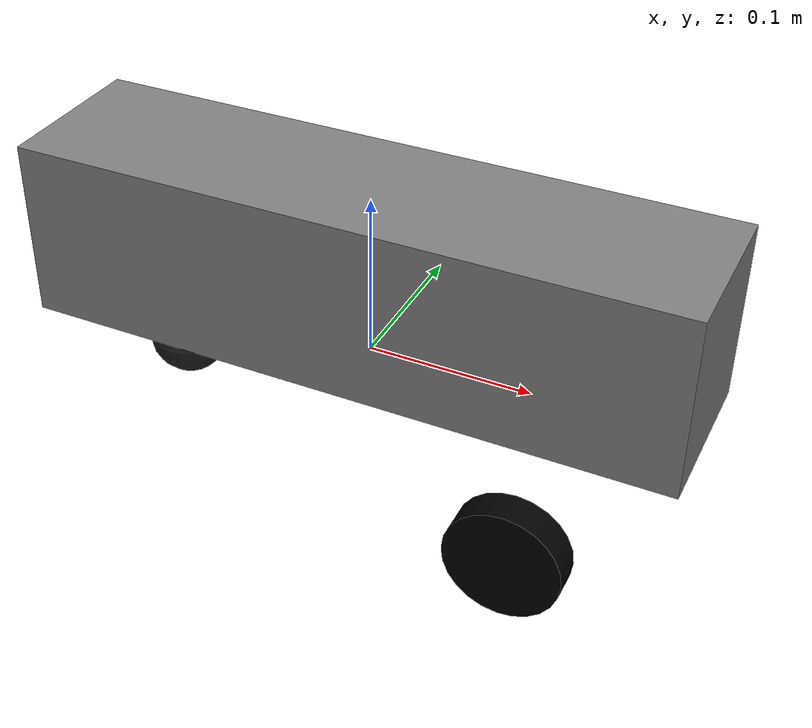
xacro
<?xml version="1.0"?>
<robot
     xmlns:xacro="http://www.ros.org/wiki/xacro" name="brobot">
     <!-- define the base-link origin to lie at floor level, between the drive wheels-->
     <!--main body is a simple box; origin is a center of box-->
    <xacro:property name="vis_bodylen" value="0.4" />
    <xacro:property name="vis_bodywidth" value="0.1" />
    <xacro:property name="vis_bodyheight" value="0.11" />

    <xacro:property name="real_bodylen" value="0.4" />
    <xacro:property name="real_bodywidth" value="0.2" />
    <xacro:property name="real_bodyheight" value="0.11" />
    <xacro:property name="body_mass" value="20.0" />
    <xacro:property name="bodyclearance" value="0.0" />  <!--clearance from bottom of box to ground-->

    <!-- "track" is the distance between the drive wheels -->
    <xacro:property name="track" value="${real_bodywidth}" />
    <xacro:property name="sonar_offset" value="-0.18" />  <!--clearance from bottom of box to ground-->

    <!-- Wheels -->
    <xacro:property name="wheel_radius" value="${0.14605/2}" />
    <xacro:property name="front_wheelX" value="${-wheel_radius+real_bodylen/2}" />
    <xacro:property name="rear_wheelX" value="${-wheel_radius+real_bodylen/2}" />
    <xacro:property name="wheelY" value="${real_bodywidth/2}" />
    <xacro:property name="wheelZ" value="${wheel_radius-0.1}" />

  <!-- caster wheel radius and height -->
  <!-- caster wheel mass -->
  <xacro:property name="caster_f_height" value="${0.14605}" />
  <xacro:property name="caster_f_radius" value="0.025" />
  <xacro:property name="caster_f_mass" value="0.5" /> <!-- in kg-->

  <!-- caster wheel radius and height -->
  <!-- caster wheel mass -->
  <xacro:property name="caster_b_height" value="0.04" />
  <xacro:property name="caster_b_radius" value="0.025" />
  <xacro:property name="caster_b_mass" value="0.5" /> <!-- in kg-->

    <!-- Material -->
    <material name="chassis_mat">
      <color rgba="0.5 0.5 0.5 1"/>
    </material>
    <!--here is a default inertia matrix with small, but legal values; use this when don't need accuracy for I -->
    <!--model will assign inertia matrix dominated by main body box -->
    <xacro:macro name="default_inertial" params="mass *origin">
        <inertial>
          <xacro:insert_block name="origin"/>
          <mass value="${mass}" />
          <inertia ixx="0.001" ixy="0.0" ixz="0.0"
            iyy="0.001" iyz="0.0"
            izz="0.001" />
        </inertial>
    </xacro:macro>

    <!-- Inertia of a solid cuboid. Width is measured along the x axis, depth
       along the y axis, and height along the z axis. -->

  <xacro:macro name="solid_cuboid_inertial"
               params="width depth height mass *origin">
    <inertial>
      <xacro:insert_block name="origin"/>
      <mass value="${mass}"/>
      <inertia ixx="0.01"
               ixy="0" ixz="0"
               iyy="0.01"
               iyz="0"
               izz="0.01"/>
    </inertial>
  </xacro:macro>

<!-- Body -->

  <!-- Base Link -->
  <!-- base_link must have geometry so that its axes can be displayed in
       rviz. -->
  <link name="base_link">
    <visual>
    <origin xyz="0 0 0"/>
      <geometry>
        <box size="0.01 0.01 0.01"/>
      </geometry>
      <material name="chassis_mat"/>
    </visual>

   <!-- Does this need a collision box? -->
    <collision>
      <origin xyz="0 0 0"/>
      <geometry>
        <box size="0.01 0.01 0.01"/>
      </geometry>
    </collision>

    <xacro:default_inertial mass="${0.01}">
    <origin xyz="0 0 0"/>
    </xacro:default_inertial>
  </link>
  <gazebo reference="base_link">
    <material>Gazebo/Grey</material>
  </gazebo>

<!-- Joint between Base_Link and Chassis -->
  <joint name="base_link_to_chassis" type="fixed">
    <parent link="base_link"/>
    <child link="chassis"/>
  </joint>

  <!-- Chassis -->
  <link name="chassis">
    <visual>
      <origin xyz="0 0 ${vis_bodyheight/2+bodyclearance}"/>
      <geometry>
        <box size="${vis_bodylen} ${vis_bodywidth} ${vis_bodyheight}"/>
      </geometry>
      <material name="chassis_mat"/>
    </visual>

    <collision>
      <origin xyz="0 0 ${real_bodyheight/2+bodyclearance}"/>
      <geometry>
        <box size="${real_bodylen} ${real_bodywidth} ${real_bodyheight}"/>
      </geometry>
    </collision>

  <xacro:solid_cuboid_inertial
        width="${real_bodylen}" depth="${real_bodywidth}"
        height="${real_bodyheight}" mass="${body_mass}">
      <origin xyz="0 0 ${real_bodyheight/2+bodyclearance}"/>
    </xacro:solid_cuboid_inertial>
  </link>
  <gazebo reference="chassis">
    <material>Gazebo/Grey</material>
  </gazebo>

<!-- Wheels -->
  <xacro:include filename="$(find bad_robot_urdf)/urdf/wheels.xacro"/>

  <xacro:rear_wheel lr_prefix="left" fr_prefix="front"
                     lr_reflect="1" fr_reflect="1"
                     x="${front_wheelX}" y="${wheelY}" z="${wheelZ}"/>
  <xacro:rear_wheel lr_prefix="right" fr_prefix="front"
                     lr_reflect="-1" fr_reflect="1"
                     x="${front_wheelX}" y="${wheelY}" z="${wheelZ}"/>

<!-- Caster Wheel Macro -->

<!--Caster back  -->

    <link name="caster_back_link">

    <visual>
      <origin xyz="0 0 0 " rpy="${M_PI/2} 0 0" />

      <geometry>

	<sphere radius="${caster_b_radius}" />

      </geometry>
      <material name="Black" />
    </visual>

      <collision>
        <geometry>
		<sphere radius="${caster_b_radius}" />
        </geometry>
      <origin xyz="0 0 0 " rpy="${M_PI/2} 0 0" />
      </collision>
      <inertial>
        <mass value="${caster_b_mass}" />
        <origin xyz="0 0 0" />
        <inertia ixx="0.001" ixy="0.0" ixz="0.0"
                 iyy="0.001" iyz="0.0"
                 izz="0.001" />
      </inertial>
    </link>

    <joint name="caster_back_joint" type="fixed">
      <parent link="base_link"/>
      <child link="caster_back_link"/>
      <origin xyz="${-rear_wheelX} ${0.0} ${wheelZ}" rpy="${-M_PI/2} 0 0"/>
    </joint>

  <gazebo reference="caster_back_link">
    <turnGravityOff>false</turnGravityOff>
        <mu1>0.0</mu1>
    <mu2>0.0</mu2>
    <material>Gazebo/Black</material>
  </gazebo>

<!-- Sonar -->

<!-- Lidar -->
  <!--Lidar Joint-->

<!-- Lidar Link-->
<!-- Kinect -->
  <!-- attach the kinect to the mobile robot -->
  <!-- kinect depth frame has a different viewpoint; publish it separately-->
<!-- Camera -->
  <!-- attach the camera to the mobile robot -->

<!-- Gazebo Settings -->

 <gazebo>
    <!-- Needed otherwise Error Message, maybe just needs robotNamespace as a parameter -->
    <plugin name="differential_drive_controller" filename="libgazebo_ros_diff_drive.so">
    <alwaysOn>true</alwaysOn>
    <updateRate>100</updateRate>
    <legacyMode>true</legacyMode>
    <leftJoint>right_front_axle</leftJoint>
    <rightJoint>left_front_axle</rightJoint>
    <wheelSeparation>${track}</wheelSeparation>
    <wheelDiameter>${0.14605}</wheelDiameter>
    <torque>200</torque>
    <commandTopic>cmd_vel</commandTopic>
    <odometryTopic>odom</odometryTopic>
    <odometryFrame>odom</odometryFrame>
    <robotBaseFrame>base_link</robotBaseFrame>
    <!--don't publish wheel TF, so it does not conflict with robot_state_publisher -->
    <publishWheelTF>false</publishWheelTF>
    <publishWheelJointState>true</publishWheelJointState>
  </plugin>
 </gazebo>

</robot>

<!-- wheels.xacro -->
<robot name="wheel" xmlns:xacro="http://www.ros.org/wiki/xacro">

  <!-- Parameter -->
  <xacro:property name="M_PI" value="3.1415926535897931" />
  <xacro:property name="Einschlagswinkel" value="${M_PI/8}"/>
  <xacro:property name="degrees_90" value="${M_PI/2}"/>

  <xacro:property name="hub_dia" value="${0.03652}"/>
  <xacro:property name="tire_dia" value="${0.06605}"/>
  <xacro:property name="tire_width" value="0.0189"/>
  <xacro:property name="wheel_mass" value="0.29"/>

  <xacro:property name="axle_eff_limit" value="1.12766"/>
  <xacro:property name="axle_vel_limit" value="10.8696"/>

  <!-- These constants are used to simulate a Traxxas 2056 servo operated at
       6 V. servo_stall_torque is measured in N m. servo_no_load_speed is
       measured in rad/s. -->

    <xacro:property name="servo_stall_torque" value="0.5649"/>
  <xacro:property name="servo_no_load_speed" value="4.553"/>

<!-- Materials -->
  <material name="tire_mat">
    <color rgba="0 0 0 1"/>
  </material>

<!-- Macros -->
  <!-- Null inertial element. This is needed to make the model work with
       Gazebo. -->
  <xacro:macro name="null_inertial">
    <inertial>
      <mass value="0.001"/>
      <inertia ixx="0.001" ixy="0" ixz="0" iyy="0.001" iyz="0" izz="0.001"/>
    </inertial>
  </xacro:macro>

  <!-- Inertia of a solid cuboid. Width is measured along the x axis, depth
       along the y axis, and height along the z axis. -->
  <xacro:macro name="solid_cuboid_inertial"
               params="width depth height mass *origin">
    <inertial>
      <xacro:insert_block name="origin"/>
      <mass value="${mass}"/>
      <inertia ixx="${mass * (depth * depth + height * height) / 12}"
               ixy="0" ixz="0"
               iyy="${mass * (width * width + height * height) / 12}"
               iyz="0"
               izz="${mass * (width * width + depth * depth) / 12}"/>
    </inertial>
  </xacro:macro>

  <xacro:macro name="thick_walled_tube_inertial"
               params="inner_rad outer_rad height mass">
    <inertial>
      <mass value="${mass}"/>
      <inertia ixx="${(1 / 12) * mass * (3 * (inner_rad * inner_rad +
                    outer_rad * outer_rad) + height * height)}"
               ixy="0" ixz="0"
               iyy="${(1 / 12) * mass * (3 * (inner_rad * inner_rad +
                    outer_rad * outer_rad) + height * height)}"
               iyz="0"
               izz="${mass * (inner_rad * inner_rad +
                    outer_rad * outer_rad) / 2}"/>
    </inertial>
  </xacro:macro>

  <xacro:macro name="chassis_joint"
               params="lr_prefix fr_prefix lr_reflect fr_reflect child x y z">
    <joint name="${lr_prefix}_${fr_prefix}_chassis_joint" type="fixed">
      <parent link="chassis"/>
      <child link="${child}"/>
      <origin xyz="${x*fr_reflect} ${y*lr_reflect} ${z}"/>
      <axis xyz="0 0 -1"/>
    </joint>
  </xacro:macro>

<!-- Steering Joint -->

  <xacro:macro name="steering_joint" params="lr_prefix fr_prefix lr_reflect fr_reflect">
    <joint name="${lr_prefix}_${fr_prefix}_steering_joint" type="revolute">
    <!-- revolute -->
      <parent link="${lr_prefix}_${fr_prefix}_steering_link"/>
      <child link="${lr_prefix}_${fr_prefix}_axle_carrier"/>
      <axis xyz="0 0 1"/>
      <limit lower="${-Einschlagswinkel}" upper="${Einschlagswinkel}"
             effort="${servo_stall_torque}" velocity="${servo_no_load_speed}"/>
    </joint>
<!-- Transmission -->
    <transmission name="${lr_prefix}_${fr_prefix}_steering_joint_trans">
      <type>transmission_interface/SimpleTransmission</type>
      <joint name="${lr_prefix}_${fr_prefix}_steering_joint">
        <hardwareInterface>hardware_interface/EffortJointInterface</hardwareInterface>
      </joint>
      <actuator name="${lr_prefix}_${fr_prefix}_steering_joint_act">
        <hardwareInterface>hardware_interface/EffortJointInterface</hardwareInterface>
        <mechanicalReduction>1</mechanicalReduction>
      </actuator>
    </transmission>
  </xacro:macro>

<!-- Axle Joint -->
   <xacro:macro name="axle" params="lr_prefix fr_prefix lr_reflect fr_reflect">
    <joint name="${lr_prefix}_${fr_prefix}_axle" type="continuous">
      <parent link="${lr_prefix}_${fr_prefix}_axle_carrier"/>
      <child link="${lr_prefix}_${fr_prefix}_wheel"/>
      <origin rpy="${degrees_90} 0 0"/>
      <axis xyz="0 0 -1"/>
      <limit effort="${axle_eff_limit}" velocity="${axle_vel_limit}"/>
    </joint>
    <transmission name="${lr_prefix}_${fr_prefix}_axle_trans">
      <type>transmission_interface/SimpleTransmission</type>
      <joint name="${lr_prefix}_${fr_prefix}_axle">
        <hardwareInterface>hardware_interface/EffortJointInterface</hardwareInterface>
      </joint>
      <actuator name="${lr_prefix}_${fr_prefix}_axle_act">
        <!-- This hardwareInterface element exists for compatibility
             with ROS Hydro. -->
        <hardwareInterface>hardware_interface/EffortJointInterface</hardwareInterface>
        <mechanicalReduction>1</mechanicalReduction>
      </actuator>
    </transmission>
  </xacro:macro>

  <!-- Wheel -->
    <xacro:macro name="wheel" params="lr_prefix fr_prefix">
    <link name="${lr_prefix}_${fr_prefix}_wheel">
      <visual>
        <origin xyz=" 0 0 0"/>
        <geometry>
          <cylinder radius="${tire_dia / 2}" length="${tire_width}"/>
        </geometry>
        <material name="tire_mat"/>
      </visual>

      <collision>
        <origin xyz="0 0 0"/>
        <geometry>
          <cylinder radius="${tire_dia / 2}" length="${tire_width}"/>
        </geometry>
      </collision>

      <xacro:thick_walled_tube_inertial
          inner_rad="${hub_dia / 2}" outer_rad="${tire_dia / 2}"
          height="${tire_width}" mass="${wheel_mass}"/>
    </link>

    <gazebo reference="${lr_prefix}_${fr_prefix}_wheel">
      <material>Gazebo/Black</material>
    </gazebo>

  </xacro:macro>

<!-- Rear and Front Wheels out of before defined Macros -->
  <!-- Front wheel -->
  <xacro:macro name="front_wheel"
               params="lr_prefix fr_prefix lr_reflect fr_reflect x y z">
    <!-- Chassis Link -->
    <xacro:chassis_joint lr_prefix="${lr_prefix}" fr_prefix="${fr_prefix}"
                 lr_reflect="${lr_reflect}" fr_reflect="${fr_reflect}"
                 child="${lr_prefix}_${fr_prefix}_steering_link" x="${x}" y="${y}" z="${z}"/>
    <!-- Steering Link -->
    <link name="${lr_prefix}_${fr_prefix}_steering_link">
      <xacro:null_inertial/>
    </link>
    <!-- Steering Joint -->
    <xacro:steering_joint lr_prefix="${lr_prefix}" fr_prefix="${fr_prefix}"
                 lr_reflect="${lr_reflect}" fr_reflect="${fr_reflect}"/>

    <!-- Axle Carrier -->
    <link name="${lr_prefix}_${fr_prefix}_axle_carrier">
      <xacro:null_inertial/>
    </link>
    <!-- Axle -->
    <xacro:axle lr_prefix="${lr_prefix}" fr_prefix="${fr_prefix}"
                lr_reflect="${lr_reflect}" fr_reflect="${fr_reflect}"/>
    <!-- Wheel -->
    <xacro:wheel lr_prefix="${lr_prefix}" fr_prefix="${fr_prefix}"/>

  </xacro:macro>

<!-- Rear Wheel -->
<!-- no steerling link and steering joint -->
  <xacro:macro name="rear_wheel"
               params="lr_prefix fr_prefix lr_reflect fr_reflect x y z">
    <!-- Chassis Link -->
    <xacro:chassis_joint lr_prefix="${lr_prefix}" fr_prefix="${fr_prefix}"
                 lr_reflect="${lr_reflect}" fr_reflect="${fr_reflect}"
                 child="${lr_prefix}_${fr_prefix}_axle_carrier" x="${x}" y="${y}" z="${z}"/>
    <!-- Axle Carrier -->
    <link name="${lr_prefix}_${fr_prefix}_axle_carrier">
      <xacro:null_inertial/>
    </link>
    <!-- Axle -->
    <xacro:axle lr_prefix="${lr_prefix}" fr_prefix="${fr_prefix}"
                lr_reflect="${lr_reflect}" fr_reflect="${fr_reflect}"/>
    <!-- Wheel -->
    <xacro:wheel lr_prefix="${lr_prefix}" fr_prefix="${fr_prefix}"/>
  </xacro:macro>
</robot>
